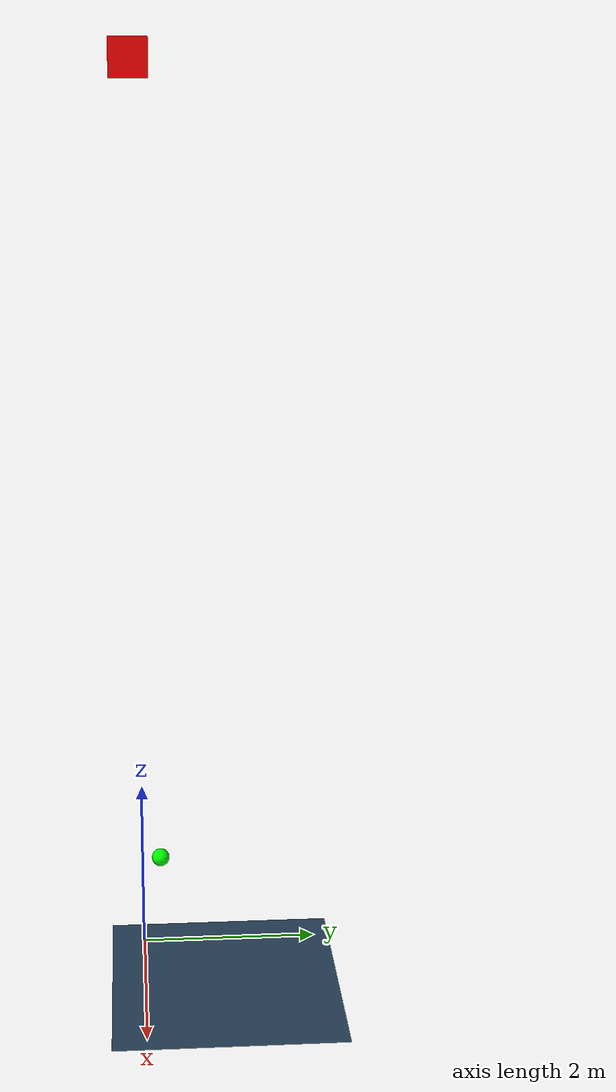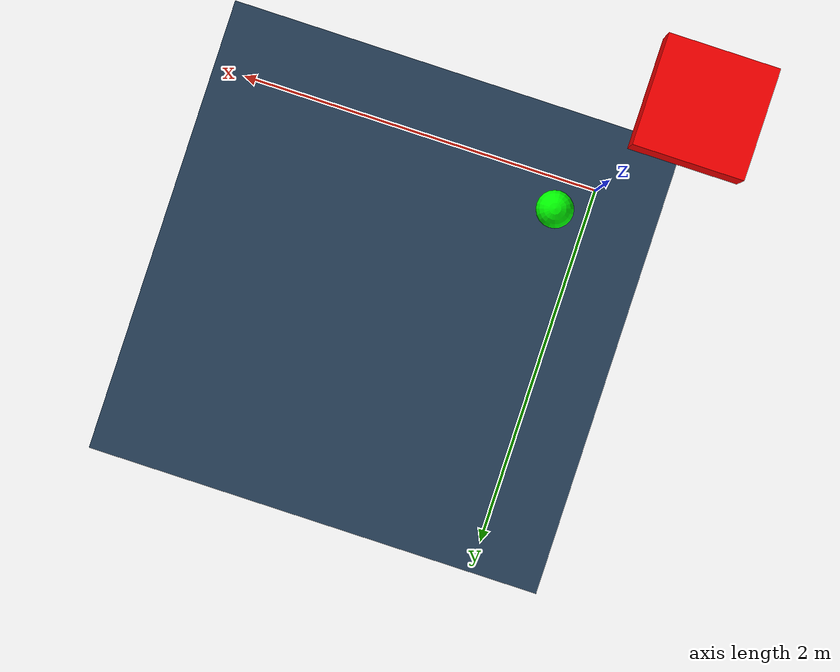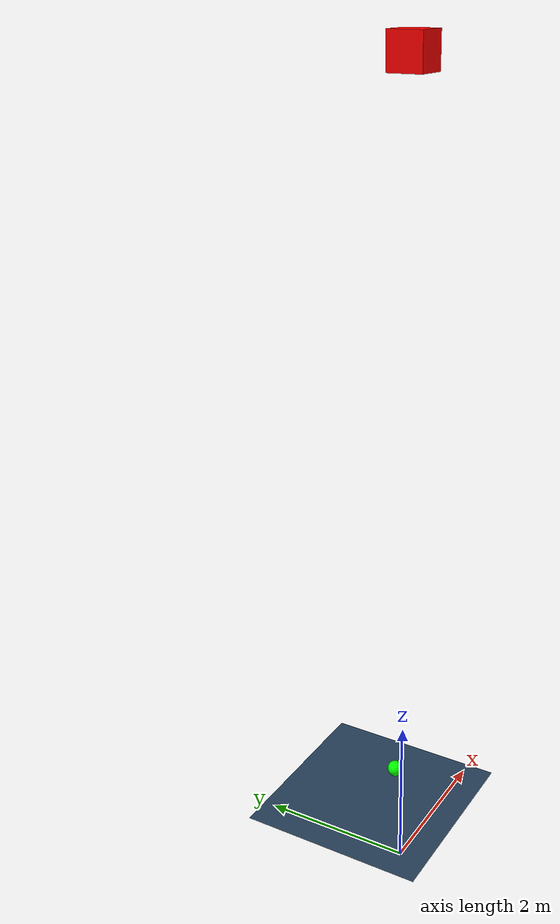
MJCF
<mujoco model="example1">
  <option gravity="0 0 -9.81" timestep="0.002"/>

  <asset>
    <texture name="grid" type="2d" builtin="checker" rgb1=".1 .2 .3" rgb2=".2 .3 .4" width="300" height="300"/>
    <material name="grid" texture="grid" texrepeat="8 8" reflectance=".2"/>
  </asset>

  <worldbody>
    <geom type="plane" size="10 10 .01" material="grid"/>

    <light pos="0 0 3" dir="0 0 -1" diffuse=".8 .8 .8"/>

    <body name="red_box" pos="0 0 10">
      <freejoint/>
      <geom type="box" size=".2 .2 .2" rgba="1 0 0 1"/>
    </body>

    <geom name="green_sphere" pos=".2 .2 1.2" size=".1" rgba="0 1 0 1"/>
  </worldbody>

  <visual>
    <global offwidth="1920" offheight="1080"/>
  </visual>
</mujoco>
